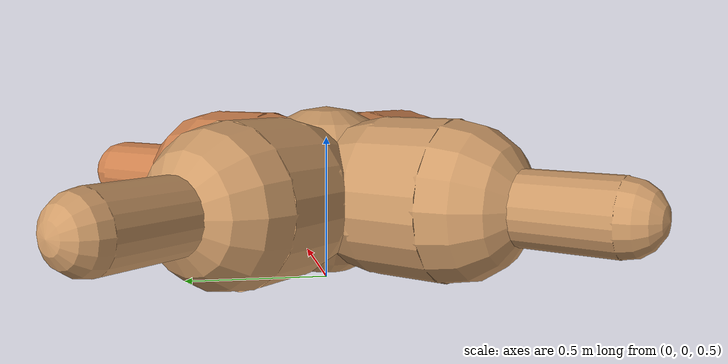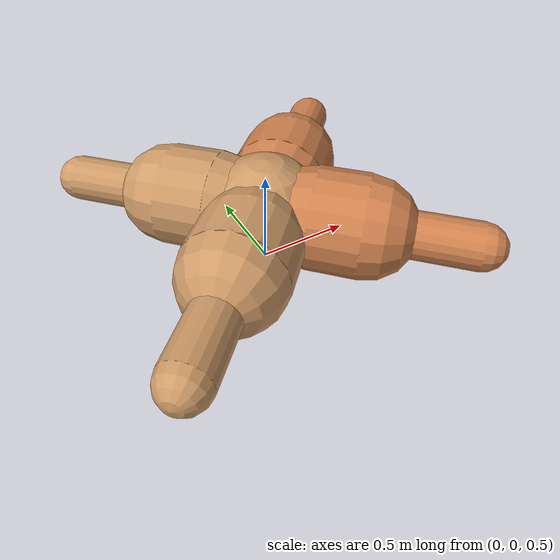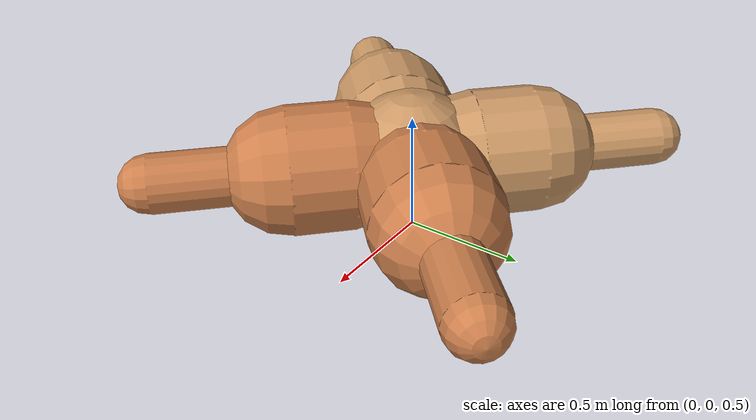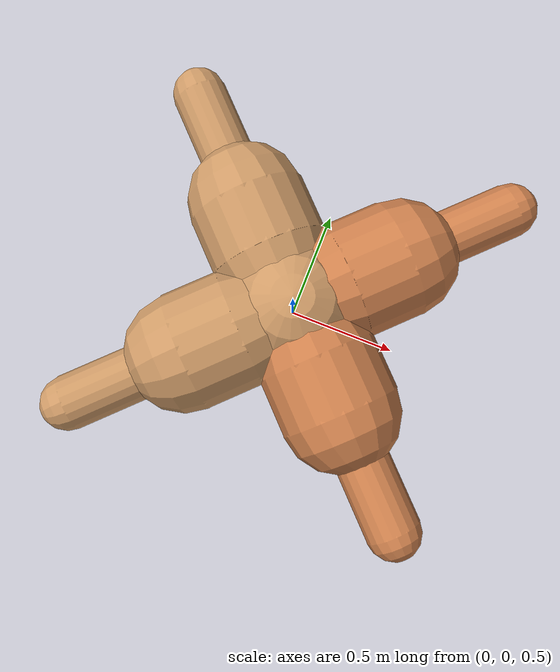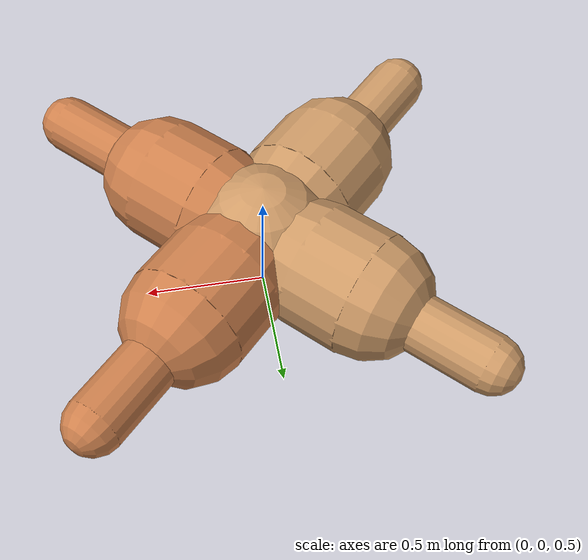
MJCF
<mujoco model="ant">
  <compiler angle="degree" coordinate="local" inertiafromgeom="true"/>
  <option integrator="RK4" timestep="0.01"/>
  <custom>
    <numeric data="0.0 0.0 0.55 1.0 0.0 0.0 0.0 0.0 1.0 0.0 -1.0 0.0 -1.0 0.0 1.0" name="init_qpos"/>
  </custom>
  <default>
    <joint armature="1" damping="1" limited="true"/>
    <geom conaffinity="0" condim="3" density="5.0" friction="1.5 0.1 0.1" margin="0.01" rgba="0.8 0.6 0.4 1"/>
  </default>
  <worldbody>
    <body name="torso" pos="0 0 0.8149829634679979">
      <geom name="torso_geom" pos="0 0 0" size="0.293478880546104" type="sphere"/>
      <!--joint armature="0" damping="0" limited="false" margin="0.01" name="root" pos="0 0 0" type="free"/-->
      <body name="front_left_leg" pos="0 0 0">
        <geom fromto="0.0 0.0 0.0 0.1795039448269704 0.1795039448269704 0.0" name="aux_1_geom" size="0.08" type="capsule" rgba=".8 .5 .3 1"/>
        <body name="aux_1" pos="0.1795039448269704 0.1795039448269704 0">
          <joint axis="0 0 1" name="hip_1" pos="0.0 0.0 0.0" range="-40 40" type="hinge"/>
          <geom fromto="0.0 0.0 0.0 0.1795039448269704 0.1795039448269704 0.0" name="left_leg_geom" size="0.265710226975586" type="capsule" rgba=".8 .5 .3 1"/>
          <body pos="0.1795039448269704 0.1795039448269704 0" name="front_left_foot">
            <joint axis="-1 1 0" name="ankle_1" pos="0.0 0.0 0.0" range="30 100" type="hinge"/>
            <geom fromto="0.0 0.0 0.0 0.38259931624919663 0.38259931624919663 0.0" name="left_ankle_geom" size="0.1214674266609221" type="capsule" rgba=".8 .5 .3 1"/>
          </body>
        </body>
      </body>
      <body name="front_right_leg" pos="0 0 0">
        <geom fromto="0.0 0.0 0.0 -0.1795039448269704 0.1795039448269704 0.0" name="aux_2_geom" size="0.08" type="capsule"/>
        <body name="aux_2" pos="-0.1795039448269704 0.1795039448269704 0">
          <joint axis="0 0 1" name="hip_2" pos="0.0 0.0 0.0" range="-40 40" type="hinge"/>
          <geom fromto="0.0 0.0 0.0 -0.1795039448269704 0.1795039448269704 0.0" name="right_leg_geom" size="0.265710226975586" type="capsule"/>
          <body pos="-0.1795039448269704 0.1795039448269704 0" name="front_right_foot">
            <joint axis="1 1 0" name="ankle_2" pos="0.0 0.0 0.0" range="-100 -30" type="hinge"/>
            <geom fromto="0.0 0.0 0.0 -0.38259931624919663 0.38259931624919663 0.0" name="right_ankle_geom" size="0.1214674266609221" type="capsule"/>
          </body>
        </body>
      </body>
      <body name="left_back_leg" pos="0 0 0">
        <geom fromto="0.0 0.0 0.0 -0.1795039448269704 -0.1795039448269704 0.0" name="aux_3_geom" size="0.08" type="capsule"/>
        <body name="aux_3" pos="-0.1795039448269704 -0.1795039448269704 0">
          <joint axis="0 0 1" name="hip_3" pos="0.0 0.0 0.0" range="-40 40" type="hinge"/>
          <geom fromto="0.0 0.0 0.0 -0.1795039448269704 -0.1795039448269704 0.0" name="back_leg_geom" size="0.265710226975586" type="capsule"/>
          <body pos="-0.1795039448269704 -0.1795039448269704 0" name="left_back_foot">
            <joint axis="-1 1 0" name="ankle_3" pos="0.0 0.0 0.0" range="-100 -30" type="hinge"/>
            <geom fromto="0.0 0.0 0.0 -0.38259931624919663 -0.38259931624919663 0.0" name="third_ankle_geom" size="0.1214674266609221" type="capsule"/>
          </body>
        </body>
      </body>
      <body name="right_back_leg" pos="0 0 0">
        <geom fromto="0.0 0.0 0.0 0.1795039448269704 -0.1795039448269704 0.0" name="aux_4_geom" size="0.08" type="capsule" rgba=".8 .5 .3 1"/>
        <body name="aux_4" pos="0.1795039448269704 -0.1795039448269704 0">
          <joint axis="0 0 1" name="hip_4" pos="0.0 0.0 0.0" range="-40 40" type="hinge"/>
          <geom fromto="0.0 0.0 0.0 0.1795039448269704 -0.1795039448269704 0.0" name="rightback_leg_geom" size="0.265710226975586" type="capsule" rgba=".8 .5 .3 1"/>
          <body pos="0.1795039448269704 -0.1795039448269704 0" name="right_back_foot">
            <joint axis="1 1 0" name="ankle_4" pos="0.0 0.0 0.0" range="30 100" type="hinge"/>
            <geom fromto="0.0 0.0 0.0 0.38259931624919663 -0.38259931624919663 0.0" name="fourth_ankle_geom" size="0.1214674266609221" type="capsule" rgba=".8 .5 .3 1"/>
          </body>
        </body>
      </body>
    </body>
  </worldbody>
  <actuator>
    <motor ctrllimited="true" ctrlrange="-1.0 1.0" joint="hip_4" gear="150"/>
    <motor ctrllimited="true" ctrlrange="-1.0 1.0" joint="ankle_4" gear="150"/>
    <motor ctrllimited="true" ctrlrange="-1.0 1.0" joint="hip_1" gear="150"/>
    <motor ctrllimited="true" ctrlrange="-1.0 1.0" joint="ankle_1" gear="150"/>
    <motor ctrllimited="true" ctrlrange="-1.0 1.0" joint="hip_2" gear="150"/>
    <motor ctrllimited="true" ctrlrange="-1.0 1.0" joint="ankle_2" gear="150"/>
    <motor ctrllimited="true" ctrlrange="-1.0 1.0" joint="hip_3" gear="150"/>
    <motor ctrllimited="true" ctrlrange="-1.0 1.0" joint="ankle_3" gear="150"/>
  </actuator>
</mujoco>
